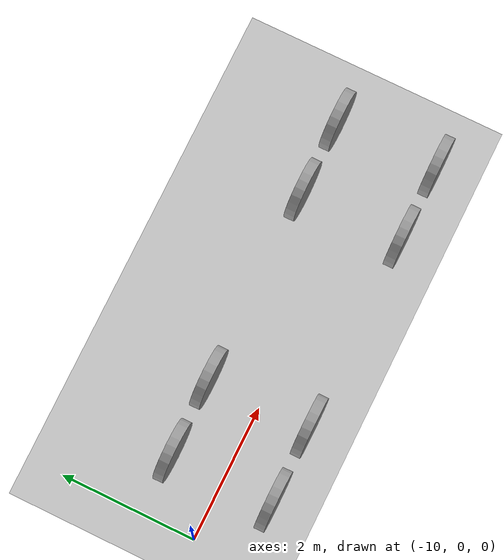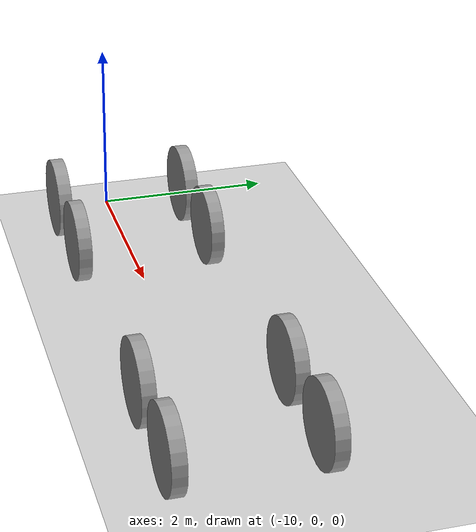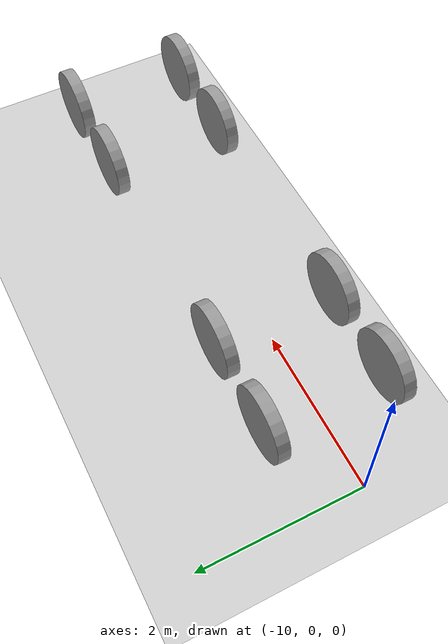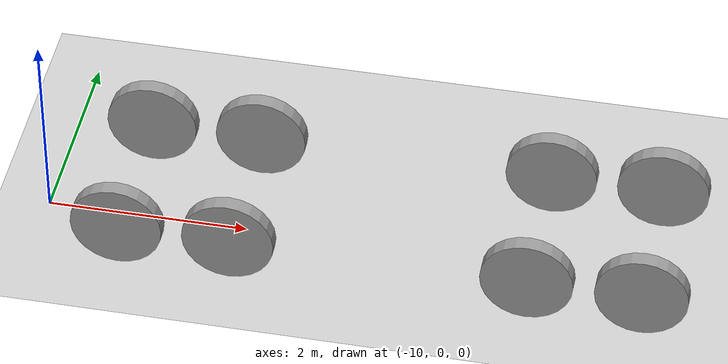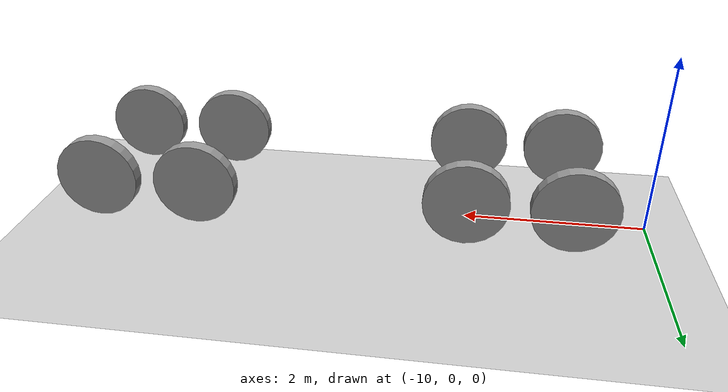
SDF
<sdf version="1.7">
 <world name="default">
  <model name="ground_plane">
   <static>1</static>
   <link name="link">
    <collision name="collision">
     <geometry><plane><normal>0 0 1</normal><size>100 100</size></plane></geometry>
     <surface>
      <contact><collide_bitmask>65535</collide_bitmask></contact>
      <friction><ode><mu>100</mu><mu2>50</mu2></ode></friction>
     </surface>
    </collision>
    <visual name="visual">
     <cast_shadows>0</cast_shadows>
     <geometry><plane><normal>0 0 1</normal><size>100 100</size></plane></geometry>
     <material>
      <script><uri>file://media/materials/scripts/gazebo.material</uri><name>Gazebo/Grey</name></script>
     </material>
    </visual>
   </link>
  </model>
  <model name="train_wheels_clone">
   <link name="link">
    <inertial>
     <mass>1</mass>
     <inertia><ixx>0.145833</ixx><ixy>0</ixy><ixz>0</ixz><iyy>0.145833</iyy><iyz>0</iyz><izz>0.125</izz></inertia>
    </inertial>
    <pose>3 0.75 0.6 0 -0 0</pose>
    <visual name="visual">
     <geometry><cylinder><radius>0.45</radius><length>0.15</length></cylinder></geometry>
     <material>
      <script><name>Gazebo/Grey</name><uri>file://media/materials/scripts/gazebo.material</uri></script>
      <shader type="pixel"><normal_map>__default__</normal_map></shader>
      <ambient>0.3 0.3 0.3 1</ambient>
      <diffuse>0.7 0.7 0.7 1</diffuse>
      <specular>0.01 0.01 0.01 1</specular>
      <emissive>0 0 0 1</emissive>
     </material>
     <pose>0 0 0 1.5708 -0 0</pose>
    </visual>
    <collision name="collision">
     <geometry><cylinder><radius>0.45</radius><length>0.15</length></cylinder></geometry>
     <pose>0 0 0 1.5708 -0 0</pose>
     <material>
      <script><name>Gazebo/Grey</name><uri>file://media/materials/scripts/gazebo.material</uri></script>
      <shader type="pixel"><normal_map>__default__</normal_map></shader>
      <ambient>0.3 0.3 0.3 1</ambient>
      <diffuse>0.7 0.7 0.7 1</diffuse>
      <specular>0.01 0.01 0.01 1</specular>
      <emissive>0 0 0 1</emissive>
     </material>
    </collision>
   </link>
   <link name="link_clone">
    <inertial>
     <mass>1</mass>
     <inertia><ixx>0.145833</ixx><ixy>0</ixy><ixz>0</ixz><iyy>0.145833</iyy><iyz>0</iyz><izz>0.125</izz></inertia>
    </inertial>
    <pose>1.9 0.75 0.6 0 -0 0</pose>
    <visual name="visual">
     <geometry><cylinder><radius>0.45</radius><length>0.15</length></cylinder></geometry>
     <material>
      <script><name>Gazebo/Grey</name><uri>file://media/materials/scripts/gazebo.material</uri></script>
      <shader type="pixel"><normal_map>__default__</normal_map></shader>
      <ambient>0.3 0.3 0.3 1</ambient>
      <diffuse>0.7 0.7 0.7 1</diffuse>
      <specular>0.01 0.01 0.01 1</specular>
      <emissive>0 0 0 1</emissive>
     </material>
     <pose>0 0 0 1.5708 -0 0</pose>
    </visual>
    <collision name="collision">
     <geometry><cylinder><radius>0.45</radius><length>0.15</length></cylinder></geometry>
     <pose>0 0 0 1.5708 -0 0</pose>
     <material>
      <script><name>Gazebo/Grey</name><uri>file://media/materials/scripts/gazebo.material</uri></script>
      <shader type="pixel"><normal_map>__default__</normal_map></shader>
      <ambient>0.3 0.3 0.3 1</ambient>
      <diffuse>0.7 0.7 0.7 1</diffuse>
      <specular>0.01 0.01 0.01 1</specular>
      <emissive>0 0 0 1</emissive>
     </material>
    </collision>
   </link>
   <link name="link_clone_0">
    <inertial>
     <mass>1</mass>
     <inertia><ixx>0.145833</ixx><ixy>0</ixy><ixz>0</ixz><iyy>0.145833</iyy><iyz>0</iyz><izz>0.125</izz></inertia>
    </inertial>
    <pose>3 -0.75 0.6 0 -0 0</pose>
    <visual name="visual">
     <geometry><cylinder><radius>0.45</radius><length>0.15</length></cylinder></geometry>
     <material>
      <script><name>Gazebo/Grey</name><uri>file://media/materials/scripts/gazebo.material</uri></script>
      <shader type="pixel"><normal_map>__default__</normal_map></shader>
      <ambient>0.3 0.3 0.3 1</ambient>
      <diffuse>0.7 0.7 0.7 1</diffuse>
      <specular>0.01 0.01 0.01 1</specular>
      <emissive>0 0 0 1</emissive>
     </material>
     <pose>0 0 0 1.5708 -0 0</pose>
    </visual>
    <collision name="collision">
     <geometry><cylinder><radius>0.45</radius><length>0.15</length></cylinder></geometry>
     <pose>0 0 0 1.5708 -0 0</pose>
     <material>
      <script><name>Gazebo/Grey</name><uri>file://media/materials/scripts/gazebo.material</uri></script>
      <shader type="pixel"><normal_map>__default__</normal_map></shader>
      <ambient>0.3 0.3 0.3 1</ambient>
      <diffuse>0.7 0.7 0.7 1</diffuse>
      <specular>0.01 0.01 0.01 1</specular>
      <emissive>0 0 0 1</emissive>
     </material>
    </collision>
   </link>
   <link name="link_clone_0_clone">
    <inertial>
     <mass>1</mass>
     <inertia><ixx>0.145833</ixx><ixy>0</ixy><ixz>0</ixz><iyy>0.145833</iyy><iyz>0</iyz><izz>0.125</izz></inertia>
    </inertial>
    <pose>1.9 -0.75 0.6 0 -0 0</pose>
    <visual name="visual">
     <geometry><cylinder><radius>0.45</radius><length>0.15</length></cylinder></geometry>
     <material>
      <script><name>Gazebo/Grey</name><uri>file://media/materials/scripts/gazebo.material</uri></script>
      <shader type="pixel"><normal_map>__default__</normal_map></shader>
      <ambient>0.3 0.3 0.3 1</ambient>
      <diffuse>0.7 0.7 0.7 1</diffuse>
      <specular>0.01 0.01 0.01 1</specular>
      <emissive>0 0 0 1</emissive>
     </material>
     <pose>0 0 0 1.5708 -0 0</pose>
    </visual>
    <collision name="collision">
     <geometry><cylinder><radius>0.45</radius><length>0.15</length></cylinder></geometry>
     <pose>0 0 0 1.5708 -0 0</pose>
     <material>
      <script><name>Gazebo/Grey</name><uri>file://media/materials/scripts/gazebo.material</uri></script>
      <shader type="pixel"><normal_map>__default__</normal_map></shader>
      <ambient>0.3 0.3 0.3 1</ambient>
      <diffuse>0.7 0.7 0.7 1</diffuse>
      <specular>0.01 0.01 0.01 1</specular>
      <emissive>0 0 0 1</emissive>
     </material>
    </collision>
   </link>
   <link name="link_clone_0_clone_clone">
    <inertial>
     <mass>1</mass>
     <inertia><ixx>0.145833</ixx><ixy>0</ixy><ixz>0</ixz><iyy>0.145833</iyy><iyz>0</iyz><izz>0.125</izz></inertia>
    </inertial>
    <pose>-1 -0.75 0.6 0 -0 0</pose>
    <visual name="visual">
     <geometry><cylinder><radius>0.45</radius><length>0.15</length></cylinder></geometry>
     <material>
      <script><name>Gazebo/Grey</name><uri>file://media/materials/scripts/gazebo.material</uri></script>
      <shader type="pixel"><normal_map>__default__</normal_map></shader>
      <ambient>0.3 0.3 0.3 1</ambient>
      <diffuse>0.7 0.7 0.7 1</diffuse>
      <specular>0.01 0.01 0.01 1</specular>
      <emissive>0 0 0 1</emissive>
     </material>
     <pose>0 0 0 1.5708 -0 0</pose>
    </visual>
    <collision name="collision">
     <geometry><cylinder><radius>0.45</radius><length>0.15</length></cylinder></geometry>
     <pose>0 0 0 1.5708 -0 0</pose>
     <material>
      <script><name>Gazebo/Grey</name><uri>file://media/materials/scripts/gazebo.material</uri></script>
      <shader type="pixel"><normal_map>__default__</normal_map></shader>
      <ambient>0.3 0.3 0.3 1</ambient>
      <diffuse>0.7 0.7 0.7 1</diffuse>
      <specular>0.01 0.01 0.01 1</specular>
      <emissive>0 0 0 1</emissive>
     </material>
    </collision>
   </link>
   <link name="link_clone_0_clone_clone_clone">
    <inertial>
     <mass>1</mass>
     <inertia><ixx>0.145833</ixx><ixy>0</ixy><ixz>0</ixz><iyy>0.145833</iyy><iyz>0</iyz><izz>0.125</izz></inertia>
    </inertial>
    <pose>-2.1 -0.75 0.6 0 -0 0</pose>
    <visual name="visual">
     <geometry><cylinder><radius>0.45</radius><length>0.15</length></cylinder></geometry>
     <material>
      <script><name>Gazebo/Grey</name><uri>file://media/materials/scripts/gazebo.material</uri></script>
      <shader type="pixel"><normal_map>__default__</normal_map></shader>
      <ambient>0.3 0.3 0.3 1</ambient>
      <diffuse>0.7 0.7 0.7 1</diffuse>
      <specular>0.01 0.01 0.01 1</specular>
      <emissive>0 0 0 1</emissive>
     </material>
     <pose>0 0 0 1.5708 -0 0</pose>
    </visual>
    <collision name="collision">
     <geometry><cylinder><radius>0.45</radius><length>0.15</length></cylinder></geometry>
     <pose>0 0 0 1.5708 -0 0</pose>
     <material>
      <script><name>Gazebo/Grey</name><uri>file://media/materials/scripts/gazebo.material</uri></script>
      <shader type="pixel"><normal_map>__default__</normal_map></shader>
      <ambient>0.3 0.3 0.3 1</ambient>
      <diffuse>0.7 0.7 0.7 1</diffuse>
      <specular>0.01 0.01 0.01 1</specular>
      <emissive>0 0 0 1</emissive>
     </material>
    </collision>
   </link>
   <link name="link_clone_clone">
    <inertial>
     <mass>1</mass>
     <inertia><ixx>0.145833</ixx><ixy>0</ixy><ixz>0</ixz><iyy>0.145833</iyy><iyz>0</iyz><izz>0.125</izz></inertia>
    </inertial>
    <pose>-1 0.75 0.6 0 -0 0</pose>
    <visual name="visual">
     <geometry><cylinder><radius>0.45</radius><length>0.15</length></cylinder></geometry>
     <material>
      <script><name>Gazebo/Grey</name><uri>file://media/materials/scripts/gazebo.material</uri></script>
      <shader type="pixel"><normal_map>__default__</normal_map></shader>
      <ambient>0.3 0.3 0.3 1</ambient>
      <diffuse>0.7 0.7 0.7 1</diffuse>
      <specular>0.01 0.01 0.01 1</specular>
      <emissive>0 0 0 1</emissive>
     </material>
     <pose>0 0 0 1.5708 -0 0</pose>
    </visual>
    <collision name="collision">
     <geometry><cylinder><radius>0.45</radius><length>0.15</length></cylinder></geometry>
     <pose>0 0 0 1.5708 -0 0</pose>
     <material>
      <script><name>Gazebo/Grey</name><uri>file://media/materials/scripts/gazebo.material</uri></script>
      <shader type="pixel"><normal_map>__default__</normal_map></shader>
      <ambient>0.3 0.3 0.3 1</ambient>
      <diffuse>0.7 0.7 0.7 1</diffuse>
      <specular>0.01 0.01 0.01 1</specular>
      <emissive>0 0 0 1</emissive>
     </material>
    </collision>
   </link>
   <link name="link_clone_clone_clone">
    <inertial>
     <mass>1</mass>
     <inertia><ixx>0.145833</ixx><ixy>0</ixy><ixz>0</ixz><iyy>0.145833</iyy><iyz>0</iyz><izz>0.125</izz></inertia>
    </inertial>
    <pose>-2.1 0.75 0.6 0 -0 0</pose>
    <visual name="visual">
     <geometry><cylinder><radius>0.45</radius><length>0.15</length></cylinder></geometry>
     <material>
      <script><name>Gazebo/Grey</name><uri>file://media/materials/scripts/gazebo.material</uri></script>
      <shader type="pixel"><normal_map>__default__</normal_map></shader>
      <ambient>0.3 0.3 0.3 1</ambient>
      <diffuse>0.7 0.7 0.7 1</diffuse>
      <specular>0.01 0.01 0.01 1</specular>
      <emissive>0 0 0 1</emissive>
     </material>
     <pose>0 0 0 1.5708 -0 0</pose>
    </visual>
    <collision name="collision">
     <geometry><cylinder><radius>0.45</radius><length>0.15</length></cylinder></geometry>
     <pose>0 0 0 1.5708 -0 0</pose>
     <material>
      <script><name>Gazebo/Grey</name><uri>file://media/materials/scripts/gazebo.material</uri></script>
      <shader type="pixel"><normal_map>__default__</normal_map></shader>
      <ambient>0.3 0.3 0.3 1</ambient>
      <diffuse>0.7 0.7 0.7 1</diffuse>
      <specular>0.01 0.01 0.01 1</specular>
      <emissive>0 0 0 1</emissive>
     </material>
    </collision>
   </link>
   <static>1</static>
   <pose>-7 0 0 0 -0 0</pose>
  </model>
 </world>
</sdf>
